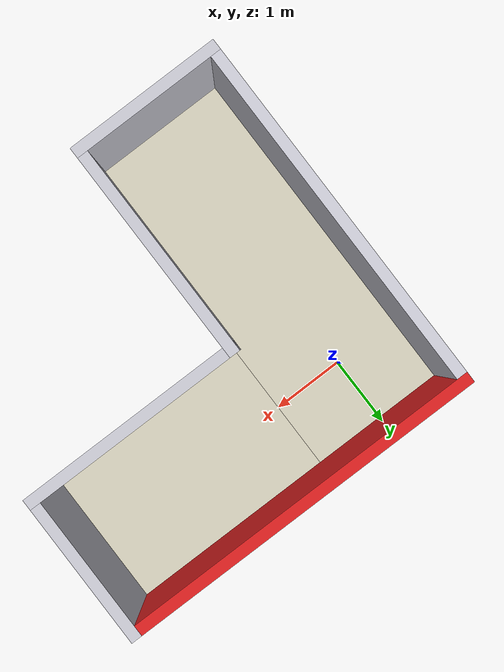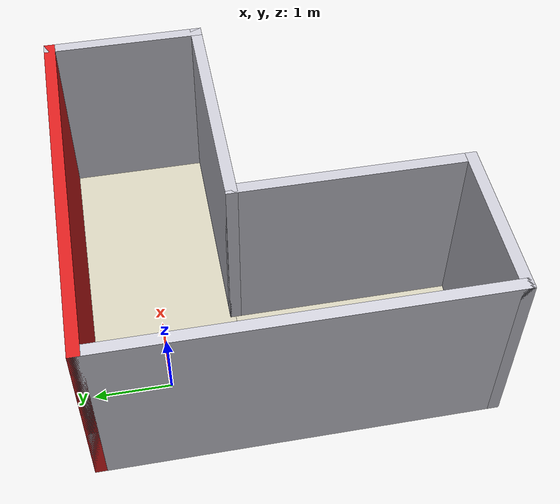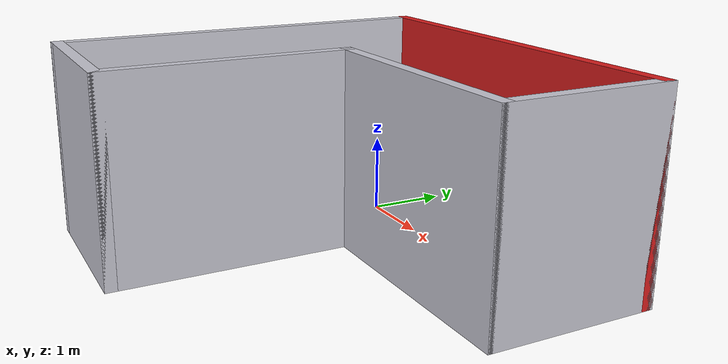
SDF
<sdf version="1.9">
 <world name="corridor">
  <physics name="1ms" type="ignored">
   <max_step_size>0.001</max_step_size>
   <real_time_factor>1.0</real_time_factor>
  </physics>
  <plugin filename="gz-sim-physics-system" name="gz::sim::systems::Physics"/>
  <plugin filename="gz-sim-scene-broadcaster-system" name="gz::sim::systems::SceneBroadcaster"/>
  <plugin filename="gz-sim-user-commands-system" name="gz::sim::systems::UserCommands"/>
  <plugin filename="gz-sim-sensors-system" name="gz::sim::systems::Sensors">
   <render_engine>ogre2</render_engine>
  </plugin>
  <plugin filename="gz-sim-imu-system" name="gz::sim::systems::Imu"/>
  <plugin filename="gz-sim-navsat-system" name="gz::sim::systems::NavSat"/>
  <spherical_coordinates>
   <latitude_deg>-35.363262</latitude_deg>
   <longitude_deg>149.165237</longitude_deg>
   <elevation>584</elevation>
   <heading_deg>0</heading_deg>
   <surface_model>EARTH_WGS84</surface_model>
  </spherical_coordinates>
  <light type="directional" name="main_light">
   <cast_shadows>false</cast_shadows>
   <pose>0 0 10 0 0 0</pose>
   <diffuse>1.0 1.0 1.0 1</diffuse>
   <specular>0.5 0.5 0.5 1</specular>
   <direction>0.1 0.1 -1</direction>
  </light>
  <model name="floor_vert">
   <static>true</static>
   <pose>0 -1.5 0 0 0 0</pose>
   <link name="link">
    <collision name="c"><geometry><box><size>2 5 0.05</size></box></geometry></collision>
    <visual name="v">
     <geometry><box><size>2 5 0.05</size></box></geometry>
     <material><ambient>0.82 0.80 0.72 1</ambient><diffuse>0.82 0.80 0.72 1</diffuse></material>
    </visual>
   </link>
  </model>
  <model name="floor_horz">
   <static>true</static>
   <pose>1.5 0 0 0 0 0</pose>
   <link name="link">
    <collision name="c"><geometry><box><size>5 2 0.05</size></box></geometry></collision>
    <visual name="v">
     <geometry><box><size>5 2 0.05</size></box></geometry>
     <material><ambient>0.82 0.80 0.72 1</ambient><diffuse>0.82 0.80 0.72 1</diffuse></material>
    </visual>
   </link>
  </model>
  <model name="wall_vert_south">
   <static>true</static>
   <pose>0 -4 1.25 0 0 0</pose>
   <link name="link">
    <collision name="c"><geometry><box><size>2.15 0.15 2.5</size></box></geometry></collision>
    <visual name="v">
     <geometry><box><size>2.15 0.15 2.5</size></box></geometry>
     <material><ambient>0.78 0.78 0.82 1</ambient><diffuse>0.78 0.78 0.82 1</diffuse></material>
    </visual>
   </link>
  </model>
  <model name="wall_vert_east">
   <static>true</static>
   <pose>1 -2.5 1.25 0 0 0</pose>
   <link name="link">
    <collision name="c"><geometry><box><size>0.15 3.15 2.5</size></box></geometry></collision>
    <visual name="v">
     <geometry><box><size>0.15 3.15 2.5</size></box></geometry>
     <material><ambient>0.78 0.78 0.82 1</ambient><diffuse>0.78 0.78 0.82 1</diffuse></material>
    </visual>
   </link>
  </model>
  <model name="wall_horz_south">
   <static>true</static>
   <pose>2.5 -1 1.25 0 0 0</pose>
   <link name="link">
    <collision name="c"><geometry><box><size>3.15 0.15 2.5</size></box></geometry></collision>
    <visual name="v">
     <geometry><box><size>3.15 0.15 2.5</size></box></geometry>
     <material><ambient>0.78 0.78 0.82 1</ambient><diffuse>0.78 0.78 0.82 1</diffuse></material>
    </visual>
   </link>
  </model>
  <model name="wall_horz_east">
   <static>true</static>
   <pose>4 0 1.25 0 0 0</pose>
   <link name="link">
    <collision name="c"><geometry><box><size>0.15 2.15 2.5</size></box></geometry></collision>
    <visual name="v">
     <geometry><box><size>0.15 2.15 2.5</size></box></geometry>
     <material><ambient>0.78 0.78 0.82 1</ambient><diffuse>0.78 0.78 0.82 1</diffuse></material>
    </visual>
   </link>
  </model>
  <model name="wall_north">
   <static>true</static>
   <pose>1.5 1 1.25 0 0 0</pose>
   <link name="link">
    <collision name="c"><geometry><box><size>5.15 0.15 2.5</size></box></geometry></collision>
    <visual name="v">
     <geometry><box><size>5.15 0.15 2.5</size></box></geometry>
     <material><ambient>0.85 0.12 0.12 1</ambient><diffuse>0.85 0.12 0.12 1</diffuse></material>
    </visual>
   </link>
  </model>
  <model name="wall_west">
   <static>true</static>
   <pose>-1 -1.5 1.25 0 0 0</pose>
   <link name="link">
    <collision name="c"><geometry><box><size>0.15 5.15 2.5</size></box></geometry></collision>
    <visual name="v">
     <geometry><box><size>0.15 5.15 2.5</size></box></geometry>
     <material><ambient>0.80 0.80 0.84 1</ambient><diffuse>0.80 0.80 0.84 1</diffuse></material>
    </visual>
   </link>
  </model>
 </world>
</sdf>
